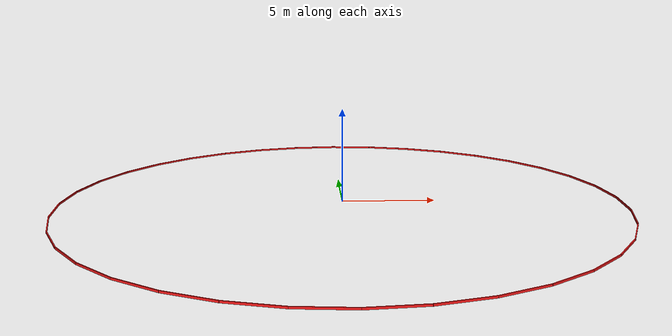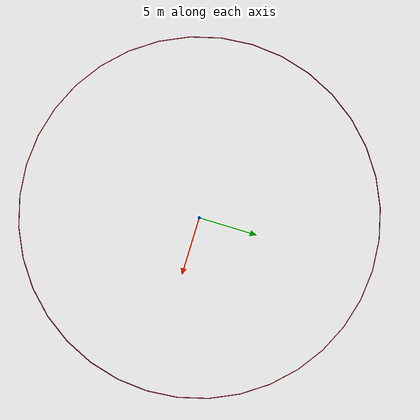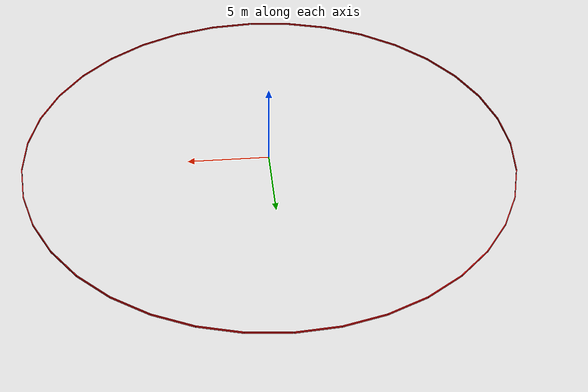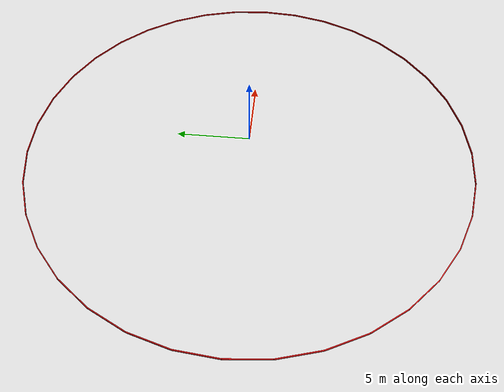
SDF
<?xml version="1.0" ?>
<sdf version="1.9">
  <model name="geofence_circle">
    <static>true</static>
    <pose>0 0 0 0 0 0</pose>
    <link name="geofence_link">
      <visual name="seg_00"><pose>14.943 1.307 0.05 0 0 1.658</pose><geometry><box><size>2.618 0.05 0.10</size></box></geometry><material><ambient>1 0.1 0.1 1</ambient><diffuse>1 0.1 0.1 1</diffuse><emissive>0.6 0 0 0</emissive></material></visual>
      <visual name="seg_01"><pose>14.489 3.882 0.05 0 0 1.833</pose><geometry><box><size>2.618 0.05 0.10</size></box></geometry><material><ambient>1 0.1 0.1 1</ambient><diffuse>1 0.1 0.1 1</diffuse><emissive>0.6 0 0 0</emissive></material></visual>
      <visual name="seg_02"><pose>13.595 6.339 0.05 0 0 2.007</pose><geometry><box><size>2.618 0.05 0.10</size></box></geometry><material><ambient>1 0.1 0.1 1</ambient><diffuse>1 0.1 0.1 1</diffuse><emissive>0.6 0 0 0</emissive></material></visual>
      <visual name="seg_03"><pose>12.287 8.604 0.05 0 0 2.182</pose><geometry><box><size>2.618 0.05 0.10</size></box></geometry><material><ambient>1 0.1 0.1 1</ambient><diffuse>1 0.1 0.1 1</diffuse><emissive>0.6 0 0 0</emissive></material></visual>
      <visual name="seg_04"><pose>10.607 10.607 0.05 0 0 2.356</pose><geometry><box><size>2.618 0.05 0.10</size></box></geometry><material><ambient>1 0.1 0.1 1</ambient><diffuse>1 0.1 0.1 1</diffuse><emissive>0.6 0 0 0</emissive></material></visual>
      <visual name="seg_05"><pose>8.604 12.287 0.05 0 0 2.531</pose><geometry><box><size>2.618 0.05 0.10</size></box></geometry><material><ambient>1 0.1 0.1 1</ambient><diffuse>1 0.1 0.1 1</diffuse><emissive>0.6 0 0 0</emissive></material></visual>
      <visual name="seg_06"><pose>6.339 13.595 0.05 0 0 2.705</pose><geometry><box><size>2.618 0.05 0.10</size></box></geometry><material><ambient>1 0.1 0.1 1</ambient><diffuse>1 0.1 0.1 1</diffuse><emissive>0.6 0 0 0</emissive></material></visual>
      <visual name="seg_07"><pose>3.882 14.489 0.05 0 0 2.880</pose><geometry><box><size>2.618 0.05 0.10</size></box></geometry><material><ambient>1 0.1 0.1 1</ambient><diffuse>1 0.1 0.1 1</diffuse><emissive>0.6 0 0 0</emissive></material></visual>
      <visual name="seg_08"><pose>1.307 14.943 0.05 0 0 3.054</pose><geometry><box><size>2.618 0.05 0.10</size></box></geometry><material><ambient>1 0.1 0.1 1</ambient><diffuse>1 0.1 0.1 1</diffuse><emissive>0.6 0 0 0</emissive></material></visual>
      <visual name="seg_09"><pose>-1.307 14.943 0.05 0 0 3.229</pose><geometry><box><size>2.618 0.05 0.10</size></box></geometry><material><ambient>1 0.1 0.1 1</ambient><diffuse>1 0.1 0.1 1</diffuse><emissive>0.6 0 0 0</emissive></material></visual>
      <visual name="seg_10"><pose>-3.882 14.489 0.05 0 0 3.403</pose><geometry><box><size>2.618 0.05 0.10</size></box></geometry><material><ambient>1 0.1 0.1 1</ambient><diffuse>1 0.1 0.1 1</diffuse><emissive>0.6 0 0 0</emissive></material></visual>
      <visual name="seg_11"><pose>-6.339 13.595 0.05 0 0 3.578</pose><geometry><box><size>2.618 0.05 0.10</size></box></geometry><material><ambient>1 0.1 0.1 1</ambient><diffuse>1 0.1 0.1 1</diffuse><emissive>0.6 0 0 0</emissive></material></visual>
      <visual name="seg_12"><pose>-8.604 12.287 0.05 0 0 3.753</pose><geometry><box><size>2.618 0.05 0.10</size></box></geometry><material><ambient>1 0.1 0.1 1</ambient><diffuse>1 0.1 0.1 1</diffuse><emissive>0.6 0 0 0</emissive></material></visual>
      <visual name="seg_13"><pose>-10.607 10.607 0.05 0 0 3.927</pose><geometry><box><size>2.618 0.05 0.10</size></box></geometry><material><ambient>1 0.1 0.1 1</ambient><diffuse>1 0.1 0.1 1</diffuse><emissive>0.6 0 0 0</emissive></material></visual>
      <visual name="seg_14"><pose>-12.287 8.604 0.05 0 0 4.102</pose><geometry><box><size>2.618 0.05 0.10</size></box></geometry><material><ambient>1 0.1 0.1 1</ambient><diffuse>1 0.1 0.1 1</diffuse><emissive>0.6 0 0 0</emissive></material></visual>
      <visual name="seg_15"><pose>-13.595 6.339 0.05 0 0 4.276</pose><geometry><box><size>2.618 0.05 0.10</size></box></geometry><material><ambient>1 0.1 0.1 1</ambient><diffuse>1 0.1 0.1 1</diffuse><emissive>0.6 0 0 0</emissive></material></visual>
      <visual name="seg_16"><pose>-14.489 3.882 0.05 0 0 4.451</pose><geometry><box><size>2.618 0.05 0.10</size></box></geometry><material><ambient>1 0.1 0.1 1</ambient><diffuse>1 0.1 0.1 1</diffuse><emissive>0.6 0 0 0</emissive></material></visual>
      <visual name="seg_17"><pose>-14.943 1.307 0.05 0 0 4.625</pose><geometry><box><size>2.618 0.05 0.10</size></box></geometry><material><ambient>1 0.1 0.1 1</ambient><diffuse>1 0.1 0.1 1</diffuse><emissive>0.6 0 0 0</emissive></material></visual>
      <visual name="seg_18"><pose>-14.943 -1.307 0.05 0 0 4.800</pose><geometry><box><size>2.618 0.05 0.10</size></box></geometry><material><ambient>1 0.1 0.1 1</ambient><diffuse>1 0.1 0.1 1</diffuse><emissive>0.6 0 0 0</emissive></material></visual>
      <visual name="seg_19"><pose>-14.489 -3.882 0.05 0 0 4.974</pose><geometry><box><size>2.618 0.05 0.10</size></box></geometry><material><ambient>1 0.1 0.1 1</ambient><diffuse>1 0.1 0.1 1</diffuse><emissive>0.6 0 0 0</emissive></material></visual>
      <visual name="seg_20"><pose>-13.595 -6.339 0.05 0 0 5.149</pose><geometry><box><size>2.618 0.05 0.10</size></box></geometry><material><ambient>1 0.1 0.1 1</ambient><diffuse>1 0.1 0.1 1</diffuse><emissive>0.6 0 0 0</emissive></material></visual>
      <visual name="seg_21"><pose>-12.287 -8.604 0.05 0 0 5.323</pose><geometry><box><size>2.618 0.05 0.10</size></box></geometry><material><ambient>1 0.1 0.1 1</ambient><diffuse>1 0.1 0.1 1</diffuse><emissive>0.6 0 0 0</emissive></material></visual>
      <visual name="seg_22"><pose>-10.607 -10.607 0.05 0 0 5.498</pose><geometry><box><size>2.618 0.05 0.10</size></box></geometry><material><ambient>1 0.1 0.1 1</ambient><diffuse>1 0.1 0.1 1</diffuse><emissive>0.6 0 0 0</emissive></material></visual>
      <visual name="seg_23"><pose>-8.604 -12.287 0.05 0 0 5.672</pose><geometry><box><size>2.618 0.05 0.10</size></box></geometry><material><ambient>1 0.1 0.1 1</ambient><diffuse>1 0.1 0.1 1</diffuse><emissive>0.6 0 0 0</emissive></material></visual>
      <visual name="seg_24"><pose>-6.339 -13.595 0.05 0 0 5.847</pose><geometry><box><size>2.618 0.05 0.10</size></box></geometry><material><ambient>1 0.1 0.1 1</ambient><diffuse>1 0.1 0.1 1</diffuse><emissive>0.6 0 0 0</emissive></material></visual>
      <visual name="seg_25"><pose>-3.882 -14.489 0.05 0 0 6.021</pose><geometry><box><size>2.618 0.05 0.10</size></box></geometry><material><ambient>1 0.1 0.1 1</ambient><diffuse>1 0.1 0.1 1</diffuse><emissive>0.6 0 0 0</emissive></material></visual>
      <visual name="seg_26"><pose>-1.307 -14.943 0.05 0 0 6.196</pose><geometry><box><size>2.618 0.05 0.10</size></box></geometry><material><ambient>1 0.1 0.1 1</ambient><diffuse>1 0.1 0.1 1</diffuse><emissive>0.6 0 0 0</emissive></material></visual>
      <visual name="seg_27"><pose>1.307 -14.943 0.05 0 0 6.371</pose><geometry><box><size>2.618 0.05 0.10</size></box></geometry><material><ambient>1 0.1 0.1 1</ambient><diffuse>1 0.1 0.1 1</diffuse><emissive>0.6 0 0 0</emissive></material></visual>
      <visual name="seg_28"><pose>3.882 -14.489 0.05 0 0 6.545</pose><geometry><box><size>2.618 0.05 0.10</size></box></geometry><material><ambient>1 0.1 0.1 1</ambient><diffuse>1 0.1 0.1 1</diffuse><emissive>0.6 0 0 0</emissive></material></visual>
      <visual name="seg_29"><pose>6.339 -13.595 0.05 0 0 6.720</pose><geometry><box><size>2.618 0.05 0.10</size></box></geometry><material><ambient>1 0.1 0.1 1</ambient><diffuse>1 0.1 0.1 1</diffuse><emissive>0.6 0 0 0</emissive></material></visual>
      <visual name="seg_30"><pose>8.604 -12.287 0.05 0 0 6.894</pose><geometry><box><size>2.618 0.05 0.10</size></box></geometry><material><ambient>1 0.1 0.1 1</ambient><diffuse>1 0.1 0.1 1</diffuse><emissive>0.6 0 0 0</emissive></material></visual>
      <visual name="seg_31"><pose>10.607 -10.607 0.05 0 0 7.069</pose><geometry><box><size>2.618 0.05 0.10</size></box></geometry><material><ambient>1 0.1 0.1 1</ambient><diffuse>1 0.1 0.1 1</diffuse><emissive>0.6 0 0 0</emissive></material></visual>
      <visual name="seg_32"><pose>12.287 -8.604 0.05 0 0 7.243</pose><geometry><box><size>2.618 0.05 0.10</size></box></geometry><material><ambient>1 0.1 0.1 1</ambient><diffuse>1 0.1 0.1 1</diffuse><emissive>0.6 0 0 0</emissive></material></visual>
      <visual name="seg_33"><pose>13.595 -6.339 0.05 0 0 7.418</pose><geometry><box><size>2.618 0.05 0.10</size></box></geometry><material><ambient>1 0.1 0.1 1</ambient><diffuse>1 0.1 0.1 1</diffuse><emissive>0.6 0 0 0</emissive></material></visual>
      <visual name="seg_34"><pose>14.489 -3.882 0.05 0 0 7.592</pose><geometry><box><size>2.618 0.05 0.10</size></box></geometry><material><ambient>1 0.1 0.1 1</ambient><diffuse>1 0.1 0.1 1</diffuse><emissive>0.6 0 0 0</emissive></material></visual>
      <visual name="seg_35"><pose>14.943 -1.307 0.05 0 0 7.767</pose><geometry><box><size>2.618 0.05 0.10</size></box></geometry><material><ambient>1 0.1 0.1 1</ambient><diffuse>1 0.1 0.1 1</diffuse><emissive>0.6 0 0 0</emissive></material></visual>
    </link>
  </model>
</sdf>
